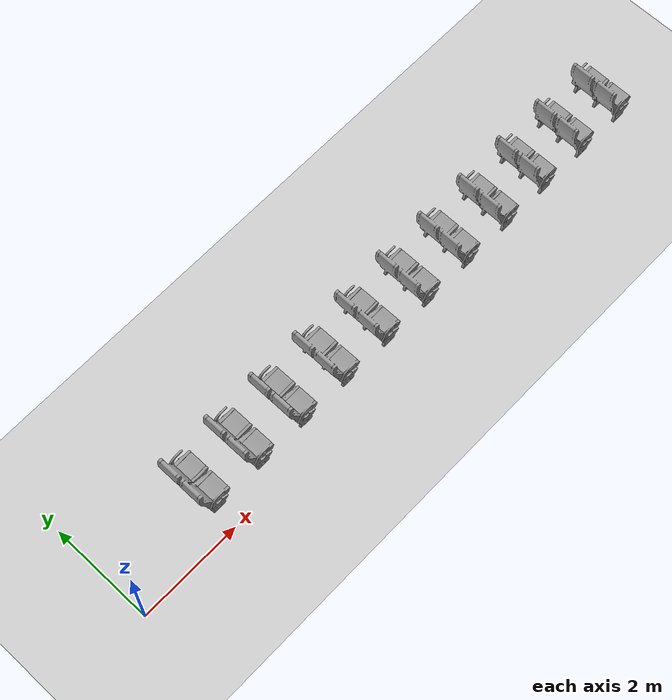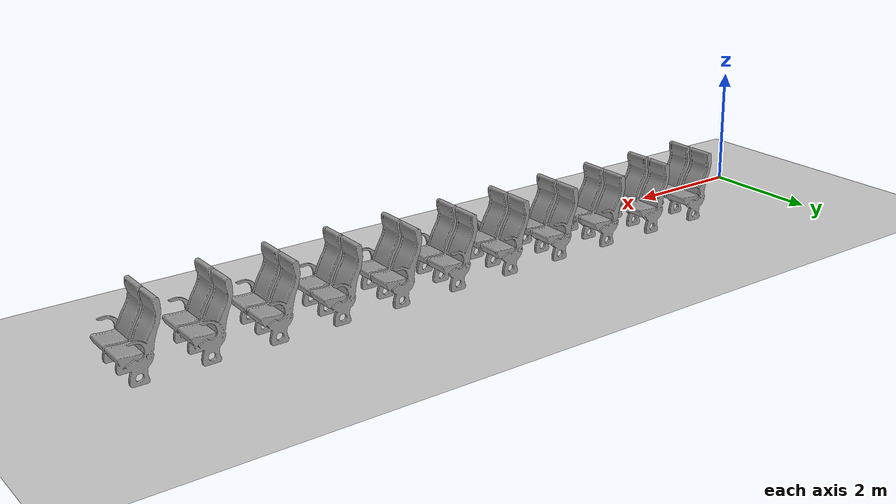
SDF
<sdf version="1.7">
 <world name="default">
  <model name="ground_plane">
   <static>1</static>
   <link name="link">
    <collision name="collision">
     <geometry><plane><normal>0 0 1</normal><size>100 100</size></plane></geometry>
     <surface><friction><ode><mu>100</mu><mu2>50</mu2></ode></friction></surface>
    </collision>
    <visual name="visual">
     <cast_shadows>0</cast_shadows>
     <geometry><plane><normal>0 0 1</normal><size>100 100</size></plane></geometry>
     <material>
      <script><uri>file://media/materials/scripts/gazebo.material</uri><name>Gazebo/Grey</name></script>
     </material>
    </visual>
   </link>
  </model>
  <model name="seat_row_0">
   <model name="seat">
    <link name="link_0">
     <inertial>
      <mass>1</mass>
      <inertia>
       <ixx>0.166667</ixx>
       <ixy>0</ixy>
       <ixz>0</ixz>
       <iyy>0.166667</iyy>
       <iyz>0</iyz>
       <izz>0.166667</izz>
      </inertia>
     </inertial>
     <visual name="visual">
      <pose>-0.3 -0.5 0 0 -0 0</pose>
      <geometry>
       <mesh><uri>/home/jatin/.gazebo/models/seat1/meshes/seat1.stl</uri><scale>0.001 0.001 0.001</scale></mesh>
      </geometry>
      <material>
       <lighting>1</lighting>
       <script><uri>file://media/materials/scripts/gazebo.material</uri><name>Gazebo/Grey</name></script>
       <shader type="pixel"><normal_map>__default__</normal_map></shader>
       <ambient>0.3 0.3 0.3 1</ambient>
       <diffuse>0.7 0.7 0.7 1</diffuse>
       <specular>0.01 0.01 0.01 1</specular>
       <emissive>0 0 0 1</emissive>
      </material>
     </visual>
     <collision name="collision">
      <pose>-0.3 -0.5 0 0 -0 0</pose>
      <geometry>
       <mesh><uri>/home/jatin/.gazebo/models/seat1/meshes/seat1.stl</uri><scale>0.001 0.001 0.001</scale></mesh>
      </geometry>
      <surface>
       <friction>
        <ode><mu>10000</mu><mu2>10000</mu2><fdir1>0 0 0</fdir1><slip1>0</slip1><slip2>0</slip2></ode>
        <torsional>
         <coefficient>1</coefficient>
         <patch_radius>0</patch_radius>
         <surface_radius>0</surface_radius>
         <use_patch_radius>1</use_patch_radius>
         <ode><slip>0</slip></ode>
        </torsional>
       </friction>
       <bounce><restitution_coefficient>0</restitution_coefficient><threshold>1e+06</threshold></bounce>
       <contact>
        <collide_without_contact>0</collide_without_contact>
        <collide_without_contact_bitmask>1</collide_without_contact_bitmask>
        <collide_bitmask>1</collide_bitmask>
        <ode>
         <soft_cfm>0</soft_cfm>
         <soft_erp>0.2</soft_erp>
         <kp>1e+13</kp>
         <kd>1</kd>
         <max_vel>0.01</max_vel>
         <min_depth>0</min_depth>
        </ode>
        <bullet>
         <split_impulse>1</split_impulse>
         <split_impulse_penetration_threshold>-0.01</split_impulse_penetration_threshold>
         <soft_cfm>0</soft_cfm>
         <soft_erp>0.2</soft_erp>
         <kp>1e+13</kp>
         <kd>1</kd>
        </bullet>
       </contact>
      </surface>
     </collision>
    </link>
    <static>0</static>
    <pose>-5.00552 -0.00365 0 0 -0 0</pose>
   </model>
   <model name="seat_0">
    <link name="link_0">
     <inertial>
      <mass>1</mass>
      <inertia>
       <ixx>0.166667</ixx>
       <ixy>0</ixy>
       <ixz>0</ixz>
       <iyy>0.166667</iyy>
       <iyz>0</iyz>
       <izz>0.166667</izz>
      </inertia>
     </inertial>
     <visual name="visual">
      <pose>-0.3 -0.5 0 0 -0 0</pose>
      <geometry>
       <mesh><uri>/home/jatin/.gazebo/models/seat1/meshes/seat1.stl</uri><scale>0.001 0.001 0.001</scale></mesh>
      </geometry>
      <material>
       <lighting>1</lighting>
       <script><uri>file://media/materials/scripts/gazebo.material</uri><name>Gazebo/Grey</name></script>
       <shader type="pixel"><normal_map>__default__</normal_map></shader>
       <ambient>0.3 0.3 0.3 1</ambient>
       <diffuse>0.7 0.7 0.7 1</diffuse>
       <specular>0.01 0.01 0.01 1</specular>
       <emissive>0 0 0 1</emissive>
      </material>
     </visual>
     <collision name="collision">
      <pose>-0.3 -0.5 0 0 -0 0</pose>
      <geometry>
       <mesh><uri>/home/jatin/.gazebo/models/seat1/meshes/seat1.stl</uri><scale>0.001 0.001 0.001</scale></mesh>
      </geometry>
      <surface>
       <friction>
        <ode><mu>10000</mu><mu2>10000</mu2><fdir1>0 0 0</fdir1><slip1>0</slip1><slip2>0</slip2></ode>
        <torsional>
         <coefficient>1</coefficient>
         <patch_radius>0</patch_radius>
         <surface_radius>0</surface_radius>
         <use_patch_radius>1</use_patch_radius>
         <ode><slip>0</slip></ode>
        </torsional>
       </friction>
       <bounce><restitution_coefficient>0</restitution_coefficient><threshold>1e+06</threshold></bounce>
       <contact>
        <collide_without_contact>0</collide_without_contact>
        <collide_without_contact_bitmask>1</collide_without_contact_bitmask>
        <collide_bitmask>1</collide_bitmask>
        <ode>
         <soft_cfm>0</soft_cfm>
         <soft_erp>0.2</soft_erp>
         <kp>1e+13</kp>
         <kd>1</kd>
         <max_vel>0.01</max_vel>
         <min_depth>0</min_depth>
        </ode>
        <bullet>
         <split_impulse>1</split_impulse>
         <split_impulse_penetration_threshold>-0.01</split_impulse_penetration_threshold>
         <soft_cfm>0</soft_cfm>
         <soft_erp>0.2</soft_erp>
         <kp>1e+13</kp>
         <kd>1</kd>
        </bullet>
       </contact>
      </surface>
     </collision>
    </link>
    <static>0</static>
    <pose>-4.00113 0.002298 0 0 -0 0</pose>
   </model>
   <model name="seat_1">
    <link name="link_0">
     <inertial>
      <mass>1</mass>
      <inertia>
       <ixx>0.166667</ixx>
       <ixy>0</ixy>
       <ixz>0</ixz>
       <iyy>0.166667</iyy>
       <iyz>0</iyz>
       <izz>0.166667</izz>
      </inertia>
     </inertial>
     <visual name="visual">
      <pose>-0.3 -0.5 0 0 -0 0</pose>
      <geometry>
       <mesh><uri>/home/jatin/.gazebo/models/seat1/meshes/seat1.stl</uri><scale>0.001 0.001 0.001</scale></mesh>
      </geometry>
      <material>
       <lighting>1</lighting>
       <script><uri>file://media/materials/scripts/gazebo.material</uri><name>Gazebo/Grey</name></script>
       <shader type="pixel"><normal_map>__default__</normal_map></shader>
       <ambient>0.3 0.3 0.3 1</ambient>
       <diffuse>0.7 0.7 0.7 1</diffuse>
       <specular>0.01 0.01 0.01 1</specular>
       <emissive>0 0 0 1</emissive>
      </material>
     </visual>
     <collision name="collision">
      <pose>-0.3 -0.5 0 0 -0 0</pose>
      <geometry>
       <mesh><uri>/home/jatin/.gazebo/models/seat1/meshes/seat1.stl</uri><scale>0.001 0.001 0.001</scale></mesh>
      </geometry>
      <surface>
       <friction>
        <ode><mu>10000</mu><mu2>10000</mu2><fdir1>0 0 0</fdir1><slip1>0</slip1><slip2>0</slip2></ode>
        <torsional>
         <coefficient>1</coefficient>
         <patch_radius>0</patch_radius>
         <surface_radius>0</surface_radius>
         <use_patch_radius>1</use_patch_radius>
         <ode><slip>0</slip></ode>
        </torsional>
       </friction>
       <bounce><restitution_coefficient>0</restitution_coefficient><threshold>1e+06</threshold></bounce>
       <contact>
        <collide_without_contact>0</collide_without_contact>
        <collide_without_contact_bitmask>1</collide_without_contact_bitmask>
        <collide_bitmask>1</collide_bitmask>
        <ode>
         <soft_cfm>0</soft_cfm>
         <soft_erp>0.2</soft_erp>
         <kp>1e+13</kp>
         <kd>1</kd>
         <max_vel>0.01</max_vel>
         <min_depth>0</min_depth>
        </ode>
        <bullet>
         <split_impulse>1</split_impulse>
         <split_impulse_penetration_threshold>-0.01</split_impulse_penetration_threshold>
         <soft_cfm>0</soft_cfm>
         <soft_erp>0.2</soft_erp>
         <kp>1e+13</kp>
         <kd>1</kd>
        </bullet>
       </contact>
      </surface>
     </collision>
    </link>
    <static>0</static>
    <pose>-2.99788 0.000297 0 0 -0 0</pose>
   </model>
   <model name="seat_2">
    <link name="link_0">
     <inertial>
      <mass>1</mass>
      <inertia>
       <ixx>0.166667</ixx>
       <ixy>0</ixy>
       <ixz>0</ixz>
       <iyy>0.166667</iyy>
       <iyz>0</iyz>
       <izz>0.166667</izz>
      </inertia>
     </inertial>
     <visual name="visual">
      <pose>-0.3 -0.5 0 0 -0 0</pose>
      <geometry>
       <mesh><uri>/home/jatin/.gazebo/models/seat1/meshes/seat1.stl</uri><scale>0.001 0.001 0.001</scale></mesh>
      </geometry>
      <material>
       <lighting>1</lighting>
       <script><uri>file://media/materials/scripts/gazebo.material</uri><name>Gazebo/Grey</name></script>
       <shader type="pixel"><normal_map>__default__</normal_map></shader>
       <ambient>0.3 0.3 0.3 1</ambient>
       <diffuse>0.7 0.7 0.7 1</diffuse>
       <specular>0.01 0.01 0.01 1</specular>
       <emissive>0 0 0 1</emissive>
      </material>
     </visual>
     <collision name="collision">
      <pose>-0.3 -0.5 0 0 -0 0</pose>
      <geometry>
       <mesh><uri>/home/jatin/.gazebo/models/seat1/meshes/seat1.stl</uri><scale>0.001 0.001 0.001</scale></mesh>
      </geometry>
      <surface>
       <friction>
        <ode><mu>10000</mu><mu2>10000</mu2><fdir1>0 0 0</fdir1><slip1>0</slip1><slip2>0</slip2></ode>
        <torsional>
         <coefficient>1</coefficient>
         <patch_radius>0</patch_radius>
         <surface_radius>0</surface_radius>
         <use_patch_radius>1</use_patch_radius>
         <ode><slip>0</slip></ode>
        </torsional>
       </friction>
       <bounce><restitution_coefficient>0</restitution_coefficient><threshold>1e+06</threshold></bounce>
       <contact>
        <collide_without_contact>0</collide_without_contact>
        <collide_without_contact_bitmask>1</collide_without_contact_bitmask>
        <collide_bitmask>1</collide_bitmask>
        <ode>
         <soft_cfm>0</soft_cfm>
         <soft_erp>0.2</soft_erp>
         <kp>1e+13</kp>
         <kd>1</kd>
         <max_vel>0.01</max_vel>
         <min_depth>0</min_depth>
        </ode>
        <bullet>
         <split_impulse>1</split_impulse>
         <split_impulse_penetration_threshold>-0.01</split_impulse_penetration_threshold>
         <soft_cfm>0</soft_cfm>
         <soft_erp>0.2</soft_erp>
         <kp>1e+13</kp>
         <kd>1</kd>
        </bullet>
       </contact>
      </surface>
     </collision>
    </link>
    <static>0</static>
    <pose>-1.99507 -0.003986 0 0 -0 0</pose>
   </model>
   <model name="seat_3">
    <link name="link_0">
     <inertial>
      <mass>1</mass>
      <inertia>
       <ixx>0.166667</ixx>
       <ixy>0</ixy>
       <ixz>0</ixz>
       <iyy>0.166667</iyy>
       <iyz>0</iyz>
       <izz>0.166667</izz>
      </inertia>
     </inertial>
     <visual name="visual">
      <pose>-0.3 -0.5 0 0 -0 0</pose>
      <geometry>
       <mesh><uri>/home/jatin/.gazebo/models/seat1/meshes/seat1.stl</uri><scale>0.001 0.001 0.001</scale></mesh>
      </geometry>
      <material>
       <lighting>1</lighting>
       <script><uri>file://media/materials/scripts/gazebo.material</uri><name>Gazebo/Grey</name></script>
       <shader type="pixel"><normal_map>__default__</normal_map></shader>
       <ambient>0.3 0.3 0.3 1</ambient>
       <diffuse>0.7 0.7 0.7 1</diffuse>
       <specular>0.01 0.01 0.01 1</specular>
       <emissive>0 0 0 1</emissive>
      </material>
     </visual>
     <collision name="collision">
      <pose>-0.3 -0.5 0 0 -0 0</pose>
      <geometry>
       <mesh><uri>/home/jatin/.gazebo/models/seat1/meshes/seat1.stl</uri><scale>0.001 0.001 0.001</scale></mesh>
      </geometry>
      <surface>
       <friction>
        <ode><mu>10000</mu><mu2>10000</mu2><fdir1>0 0 0</fdir1><slip1>0</slip1><slip2>0</slip2></ode>
        <torsional>
         <coefficient>1</coefficient>
         <patch_radius>0</patch_radius>
         <surface_radius>0</surface_radius>
         <use_patch_radius>1</use_patch_radius>
         <ode><slip>0</slip></ode>
        </torsional>
       </friction>
       <bounce><restitution_coefficient>0</restitution_coefficient><threshold>1e+06</threshold></bounce>
       <contact>
        <collide_without_contact>0</collide_without_contact>
        <collide_without_contact_bitmask>1</collide_without_contact_bitmask>
        <collide_bitmask>1</collide_bitmask>
        <ode>
         <soft_cfm>0</soft_cfm>
         <soft_erp>0.2</soft_erp>
         <kp>1e+13</kp>
         <kd>1</kd>
         <max_vel>0.01</max_vel>
         <min_depth>0</min_depth>
        </ode>
        <bullet>
         <split_impulse>1</split_impulse>
         <split_impulse_penetration_threshold>-0.01</split_impulse_penetration_threshold>
         <soft_cfm>0</soft_cfm>
         <soft_erp>0.2</soft_erp>
         <kp>1e+13</kp>
         <kd>1</kd>
        </bullet>
       </contact>
      </surface>
     </collision>
    </link>
    <static>0</static>
    <pose>-1.00236 -0.001734 0 0 -0 0</pose>
   </model>
   <model name="seat_4">
    <link name="link_0">
     <inertial>
      <mass>1</mass>
      <inertia>
       <ixx>0.166667</ixx>
       <ixy>0</ixy>
       <ixz>0</ixz>
       <iyy>0.166667</iyy>
       <iyz>0</iyz>
       <izz>0.166667</izz>
      </inertia>
     </inertial>
     <visual name="visual">
      <pose>-0.3 -0.5 0 0 -0 0</pose>
      <geometry>
       <mesh><uri>/home/jatin/.gazebo/models/seat1/meshes/seat1.stl</uri><scale>0.001 0.001 0.001</scale></mesh>
      </geometry>
      <material>
       <lighting>1</lighting>
       <script><uri>file://media/materials/scripts/gazebo.material</uri><name>Gazebo/Grey</name></script>
       <shader type="pixel"><normal_map>__default__</normal_map></shader>
       <ambient>0.3 0.3 0.3 1</ambient>
       <diffuse>0.7 0.7 0.7 1</diffuse>
       <specular>0.01 0.01 0.01 1</specular>
       <emissive>0 0 0 1</emissive>
      </material>
     </visual>
     <collision name="collision">
      <pose>-0.3 -0.5 0 0 -0 0</pose>
      <geometry>
       <mesh><uri>/home/jatin/.gazebo/models/seat1/meshes/seat1.stl</uri><scale>0.001 0.001 0.001</scale></mesh>
      </geometry>
      <surface>
       <friction>
        <ode><mu>10000</mu><mu2>10000</mu2><fdir1>0 0 0</fdir1><slip1>0</slip1><slip2>0</slip2></ode>
        <torsional>
         <coefficient>1</coefficient>
         <patch_radius>0</patch_radius>
         <surface_radius>0</surface_radius>
         <use_patch_radius>1</use_patch_radius>
         <ode><slip>0</slip></ode>
        </torsional>
       </friction>
       <bounce><restitution_coefficient>0</restitution_coefficient><threshold>1e+06</threshold></bounce>
       <contact>
        <collide_without_contact>0</collide_without_contact>
        <collide_without_contact_bitmask>1</collide_without_contact_bitmask>
        <collide_bitmask>1</collide_bitmask>
        <ode>
         <soft_cfm>0</soft_cfm>
         <soft_erp>0.2</soft_erp>
         <kp>1e+13</kp>
         <kd>1</kd>
         <max_vel>0.01</max_vel>
         <min_depth>0</min_depth>
        </ode>
        <bullet>
         <split_impulse>1</split_impulse>
         <split_impulse_penetration_threshold>-0.01</split_impulse_penetration_threshold>
         <soft_cfm>0</soft_cfm>
         <soft_erp>0.2</soft_erp>
         <kp>1e+13</kp>
         <kd>1</kd>
        </bullet>
       </contact>
      </surface>
     </collision>
    </link>
    <static>0</static>
    <pose>-0.002084 0.002792 0 0 -0 0</pose>
   </model>
   <model name="seat_5">
    <link name="link_0">
     <inertial>
      <mass>1</mass>
      <inertia>
       <ixx>0.166667</ixx>
       <ixy>0</ixy>
       <ixz>0</ixz>
       <iyy>0.166667</iyy>
       <iyz>0</iyz>
       <izz>0.166667</izz>
      </inertia>
     </inertial>
     <visual name="visual">
      <pose>-0.3 -0.5 0 0 -0 0</pose>
      <geometry>
       <mesh><uri>/home/jatin/.gazebo/models/seat1/meshes/seat1.stl</uri><scale>0.001 0.001 0.001</scale></mesh>
      </geometry>
      <material>
       <lighting>1</lighting>
       <script><uri>file://media/materials/scripts/gazebo.material</uri><name>Gazebo/Grey</name></script>
       <shader type="pixel"><normal_map>__default__</normal_map></shader>
       <ambient>0.3 0.3 0.3 1</ambient>
       <diffuse>0.7 0.7 0.7 1</diffuse>
       <specular>0.01 0.01 0.01 1</specular>
       <emissive>0 0 0 1</emissive>
      </material>
     </visual>
     <collision name="collision">
      <pose>-0.3 -0.5 0 0 -0 0</pose>
      <geometry>
       <mesh><uri>/home/jatin/.gazebo/models/seat1/meshes/seat1.stl</uri><scale>0.001 0.001 0.001</scale></mesh>
      </geometry>
      <surface>
       <friction>
        <ode><mu>10000</mu><mu2>10000</mu2><fdir1>0 0 0</fdir1><slip1>0</slip1><slip2>0</slip2></ode>
        <torsional>
         <coefficient>1</coefficient>
         <patch_radius>0</patch_radius>
         <surface_radius>0</surface_radius>
         <use_patch_radius>1</use_patch_radius>
         <ode><slip>0</slip></ode>
        </torsional>
       </friction>
       <bounce><restitution_coefficient>0</restitution_coefficient><threshold>1e+06</threshold></bounce>
       <contact>
        <collide_without_contact>0</collide_without_contact>
        <collide_without_contact_bitmask>1</collide_without_contact_bitmask>
        <collide_bitmask>1</collide_bitmask>
        <ode>
         <soft_cfm>0</soft_cfm>
         <soft_erp>0.2</soft_erp>
         <kp>1e+13</kp>
         <kd>1</kd>
         <max_vel>0.01</max_vel>
         <min_depth>0</min_depth>
        </ode>
        <bullet>
         <split_impulse>1</split_impulse>
         <split_impulse_penetration_threshold>-0.01</split_impulse_penetration_threshold>
         <soft_cfm>0</soft_cfm>
         <soft_erp>0.2</soft_erp>
         <kp>1e+13</kp>
         <kd>1</kd>
        </bullet>
       </contact>
      </surface>
     </collision>
    </link>
    <static>0</static>
    <pose>1.00189 0.000665 0 0 -0 0</pose>
   </model>
   <model name="seat_6">
    <link name="link_0">
     <inertial>
      <mass>1</mass>
      <inertia>
       <ixx>0.166667</ixx>
       <ixy>0</ixy>
       <ixz>0</ixz>
       <iyy>0.166667</iyy>
       <iyz>0</iyz>
       <izz>0.166667</izz>
      </inertia>
     </inertial>
     <visual name="visual">
      <pose>-0.3 -0.5 0 0 -0 0</pose>
      <geometry>
       <mesh><uri>/home/jatin/.gazebo/models/seat1/meshes/seat1.stl</uri><scale>0.001 0.001 0.001</scale></mesh>
      </geometry>
      <material>
       <lighting>1</lighting>
       <script><uri>file://media/materials/scripts/gazebo.material</uri><name>Gazebo/Grey</name></script>
       <shader type="pixel"><normal_map>__default__</normal_map></shader>
       <ambient>0.3 0.3 0.3 1</ambient>
       <diffuse>0.7 0.7 0.7 1</diffuse>
       <specular>0.01 0.01 0.01 1</specular>
       <emissive>0 0 0 1</emissive>
      </material>
     </visual>
     <collision name="collision">
      <pose>-0.3 -0.5 0 0 -0 0</pose>
      <geometry>
       <mesh><uri>/home/jatin/.gazebo/models/seat1/meshes/seat1.stl</uri><scale>0.001 0.001 0.001</scale></mesh>
      </geometry>
      <surface>
       <friction>
        <ode><mu>10000</mu><mu2>10000</mu2><fdir1>0 0 0</fdir1><slip1>0</slip1><slip2>0</slip2></ode>
        <torsional>
         <coefficient>1</coefficient>
         <patch_radius>0</patch_radius>
         <surface_radius>0</surface_radius>
         <use_patch_radius>1</use_patch_radius>
         <ode><slip>0</slip></ode>
        </torsional>
       </friction>
       <bounce><restitution_coefficient>0</restitution_coefficient><threshold>1e+06</threshold></bounce>
       <contact>
        <collide_without_contact>0</collide_without_contact>
        <collide_without_contact_bitmask>1</collide_without_contact_bitmask>
        <collide_bitmask>1</collide_bitmask>
        <ode>
         <soft_cfm>0</soft_cfm>
         <soft_erp>0.2</soft_erp>
         <kp>1e+13</kp>
         <kd>1</kd>
         <max_vel>0.01</max_vel>
         <min_depth>0</min_depth>
        </ode>
        <bullet>
         <split_impulse>1</split_impulse>
         <split_impulse_penetration_threshold>-0.01</split_impulse_penetration_threshold>
         <soft_cfm>0</soft_cfm>
         <soft_erp>0.2</soft_erp>
         <kp>1e+13</kp>
         <kd>1</kd>
        </bullet>
       </contact>
      </surface>
     </collision>
    </link>
    <static>0</static>
    <pose>1.99918 -0.001705 0 0 -0 0</pose>
   </model>
   <model name="seat_7">
    <link name="link_0">
     <inertial>
      <mass>1</mass>
      <inertia>
       <ixx>0.166667</ixx>
       <ixy>0</ixy>
       <ixz>0</ixz>
       <iyy>0.166667</iyy>
       <iyz>0</iyz>
       <izz>0.166667</izz>
      </inertia>
     </inertial>
     <visual name="visual">
      <pose>-0.3 -0.5 0 0 -0 0</pose>
      <geometry>
       <mesh><uri>/home/jatin/.gazebo/models/seat1/meshes/seat1.stl</uri><scale>0.001 0.001 0.001</scale></mesh>
      </geometry>
      <material>
       <lighting>1</lighting>
       <script><uri>file://media/materials/scripts/gazebo.material</uri><name>Gazebo/Grey</name></script>
       <shader type="pixel"><normal_map>__default__</normal_map></shader>
       <ambient>0.3 0.3 0.3 1</ambient>
       <diffuse>0.7 0.7 0.7 1</diffuse>
       <specular>0.01 0.01 0.01 1</specular>
       <emissive>0 0 0 1</emissive>
      </material>
     </visual>
     <collision name="collision">
      <pose>-0.3 -0.5 0 0 -0 0</pose>
      <geometry>
       <mesh><uri>/home/jatin/.gazebo/models/seat1/meshes/seat1.stl</uri><scale>0.001 0.001 0.001</scale></mesh>
      </geometry>
      <surface>
       <friction>
        <ode><mu>10000</mu><mu2>10000</mu2><fdir1>0 0 0</fdir1><slip1>0</slip1><slip2>0</slip2></ode>
        <torsional>
         <coefficient>1</coefficient>
         <patch_radius>0</patch_radius>
         <surface_radius>0</surface_radius>
         <use_patch_radius>1</use_patch_radius>
         <ode><slip>0</slip></ode>
        </torsional>
       </friction>
       <bounce><restitution_coefficient>0</restitution_coefficient><threshold>1e+06</threshold></bounce>
       <contact>
        <collide_without_contact>0</collide_without_contact>
        <collide_without_contact_bitmask>1</collide_without_contact_bitmask>
        <collide_bitmask>1</collide_bitmask>
        <ode>
         <soft_cfm>0</soft_cfm>
         <soft_erp>0.2</soft_erp>
         <kp>1e+13</kp>
         <kd>1</kd>
         <max_vel>0.01</max_vel>
         <min_depth>0</min_depth>
        </ode>
        <bullet>
         <split_impulse>1</split_impulse>
         <split_impulse_penetration_threshold>-0.01</split_impulse_penetration_threshold>
         <soft_cfm>0</soft_cfm>
         <soft_erp>0.2</soft_erp>
         <kp>1e+13</kp>
         <kd>1</kd>
        </bullet>
       </contact>
      </surface>
     </collision>
    </link>
    <static>0</static>
    <pose>2.99864 0.003129 0 0 -0 0</pose>
   </model>
   <model name="seat_8">
    <link name="link_0">
     <inertial>
      <mass>1</mass>
      <inertia>
       <ixx>0.166667</ixx>
       <ixy>0</ixy>
       <ixz>0</ixz>
       <iyy>0.166667</iyy>
       <iyz>0</iyz>
       <izz>0.166667</izz>
      </inertia>
     </inertial>
     <visual name="visual">
      <pose>-0.3 -0.5 0 0 -0 0</pose>
      <geometry>
       <mesh><uri>/home/jatin/.gazebo/models/seat1/meshes/seat1.stl</uri><scale>0.001 0.001 0.001</scale></mesh>
      </geometry>
      <material>
       <lighting>1</lighting>
       <script><uri>file://media/materials/scripts/gazebo.material</uri><name>Gazebo/Grey</name></script>
       <shader type="pixel"><normal_map>__default__</normal_map></shader>
       <ambient>0.3 0.3 0.3 1</ambient>
       <diffuse>0.7 0.7 0.7 1</diffuse>
       <specular>0.01 0.01 0.01 1</specular>
       <emissive>0 0 0 1</emissive>
      </material>
     </visual>
     <collision name="collision">
      <pose>-0.3 -0.5 0 0 -0 0</pose>
      <geometry>
       <mesh><uri>/home/jatin/.gazebo/models/seat1/meshes/seat1.stl</uri><scale>0.001 0.001 0.001</scale></mesh>
      </geometry>
      <surface>
       <friction>
        <ode><mu>10000</mu><mu2>10000</mu2><fdir1>0 0 0</fdir1><slip1>0</slip1><slip2>0</slip2></ode>
        <torsional>
         <coefficient>1</coefficient>
         <patch_radius>0</patch_radius>
         <surface_radius>0</surface_radius>
         <use_patch_radius>1</use_patch_radius>
         <ode><slip>0</slip></ode>
        </torsional>
       </friction>
       <bounce><restitution_coefficient>0</restitution_coefficient><threshold>1e+06</threshold></bounce>
       <contact>
        <collide_without_contact>0</collide_without_contact>
        <collide_without_contact_bitmask>1</collide_without_contact_bitmask>
        <collide_bitmask>1</collide_bitmask>
        <ode>
         <soft_cfm>0</soft_cfm>
         <soft_erp>0.2</soft_erp>
         <kp>1e+13</kp>
         <kd>1</kd>
         <max_vel>0.01</max_vel>
         <min_depth>0</min_depth>
        </ode>
        <bullet>
         <split_impulse>1</split_impulse>
         <split_impulse_penetration_threshold>-0.01</split_impulse_penetration_threshold>
         <soft_cfm>0</soft_cfm>
         <soft_erp>0.2</soft_erp>
         <kp>1e+13</kp>
         <kd>1</kd>
        </bullet>
       </contact>
      </surface>
     </collision>
    </link>
    <static>0</static>
    <pose>4.00193 0.002172 0 0 -0 0</pose>
   </model>
   <model name="seat_9">
    <link name="link_0">
     <inertial>
      <mass>1</mass>
      <inertia>
       <ixx>0.166667</ixx>
       <ixy>0</ixy>
       <ixz>0</ixz>
       <iyy>0.166667</iyy>
       <iyz>0</iyz>
       <izz>0.166667</izz>
      </inertia>
     </inertial>
     <visual name="visual">
      <pose>-0.3 -0.5 0 0 -0 0</pose>
      <geometry>
       <mesh><uri>/home/jatin/.gazebo/models/seat1/meshes/seat1.stl</uri><scale>0.001 0.001 0.001</scale></mesh>
      </geometry>
      <material>
       <lighting>1</lighting>
       <script><uri>file://media/materials/scripts/gazebo.material</uri><name>Gazebo/Grey</name></script>
       <shader type="pixel"><normal_map>__default__</normal_map></shader>
       <ambient>0.3 0.3 0.3 1</ambient>
       <diffuse>0.7 0.7 0.7 1</diffuse>
       <specular>0.01 0.01 0.01 1</specular>
       <emissive>0 0 0 1</emissive>
      </material>
     </visual>
     <collision name="collision">
      <pose>-0.3 -0.5 0 0 -0 0</pose>
      <geometry>
       <mesh><uri>/home/jatin/.gazebo/models/seat1/meshes/seat1.stl</uri><scale>0.001 0.001 0.001</scale></mesh>
      </geometry>
      <surface>
       <friction>
        <ode><mu>10000</mu><mu2>10000</mu2><fdir1>0 0 0</fdir1><slip1>0</slip1><slip2>0</slip2></ode>
        <torsional>
         <coefficient>1</coefficient>
         <patch_radius>0</patch_radius>
         <surface_radius>0</surface_radius>
         <use_patch_radius>1</use_patch_radius>
         <ode><slip>0</slip></ode>
        </torsional>
       </friction>
       <bounce><restitution_coefficient>0</restitution_coefficient><threshold>1e+06</threshold></bounce>
       <contact>
        <collide_without_contact>0</collide_without_contact>
        <collide_without_contact_bitmask>1</collide_without_contact_bitmask>
        <collide_bitmask>1</collide_bitmask>
        <ode>
         <soft_cfm>0</soft_cfm>
         <soft_erp>0.2</soft_erp>
         <kp>1e+13</kp>
         <kd>1</kd>
         <max_vel>0.01</max_vel>
         <min_depth>0</min_depth>
        </ode>
        <bullet>
         <split_impulse>1</split_impulse>
         <split_impulse_penetration_threshold>-0.01</split_impulse_penetration_threshold>
         <soft_cfm>0</soft_cfm>
         <soft_erp>0.2</soft_erp>
         <kp>1e+13</kp>
         <kd>1</kd>
        </bullet>
       </contact>
      </surface>
     </collision>
    </link>
    <static>0</static>
    <pose>5.00242 -0.000278 0 0 -0 0</pose>
   </model>
   <static>0</static>
   <pose>6.97692 0.875944 9.5e-05 0 -3e-06 0</pose>
  </model>
 </world>
</sdf>
